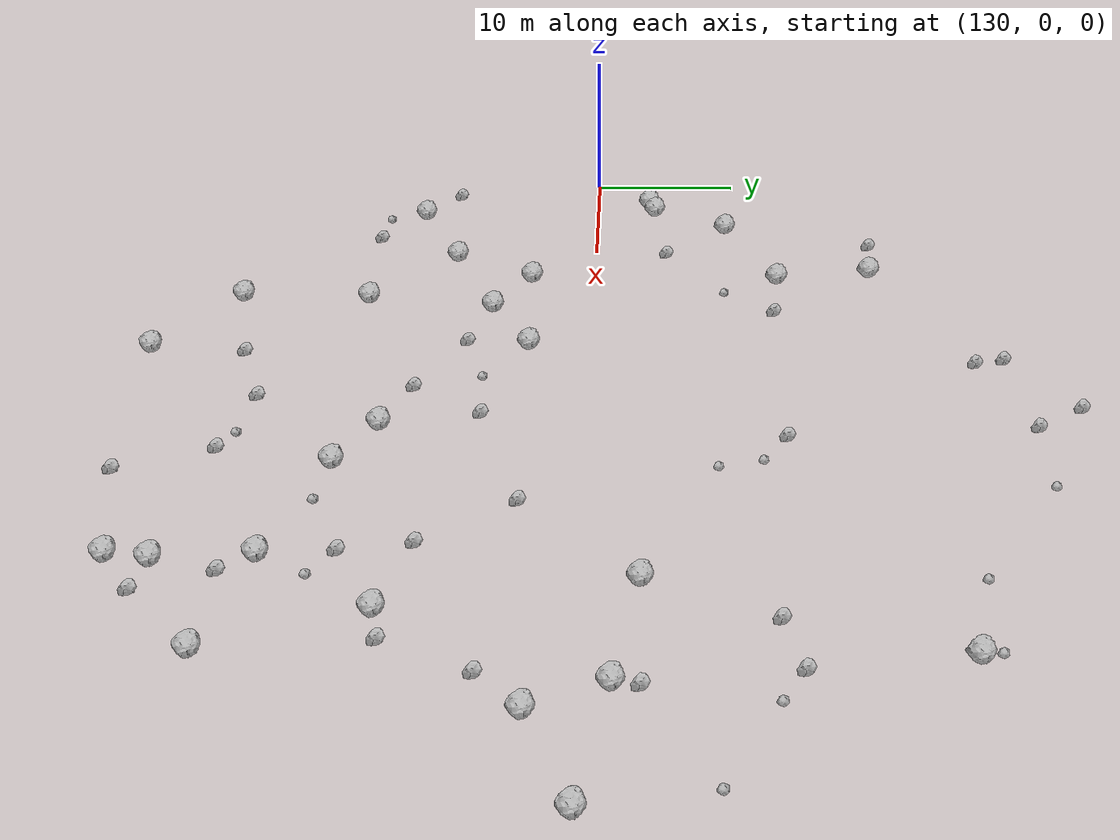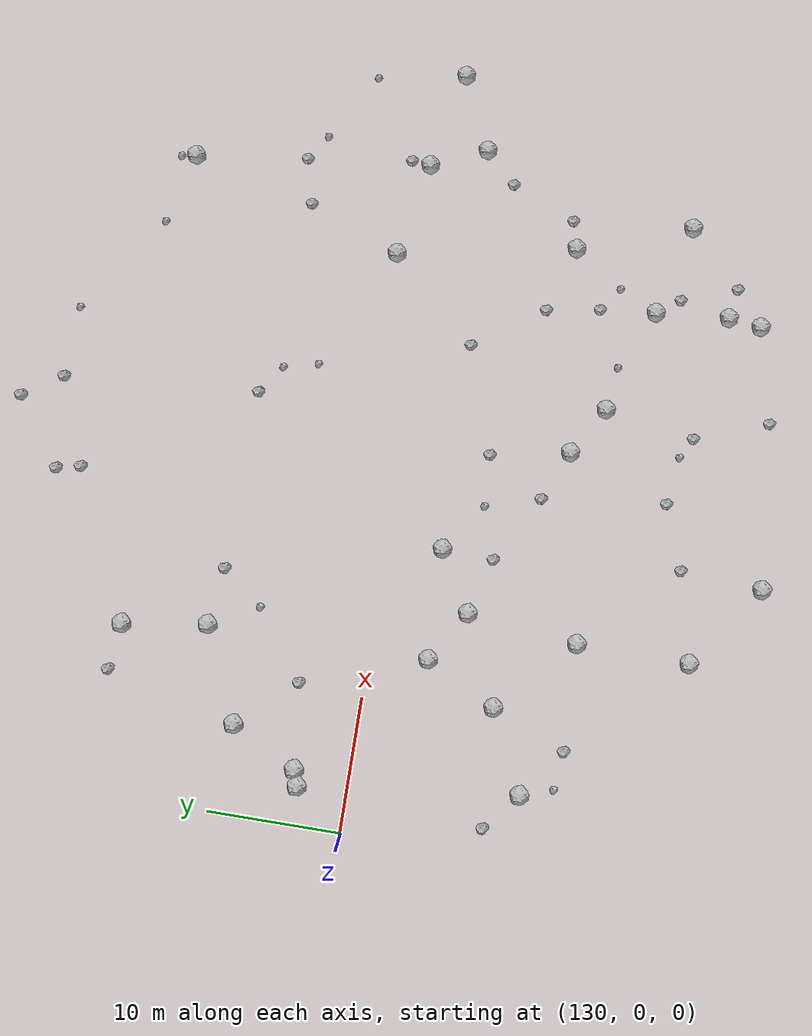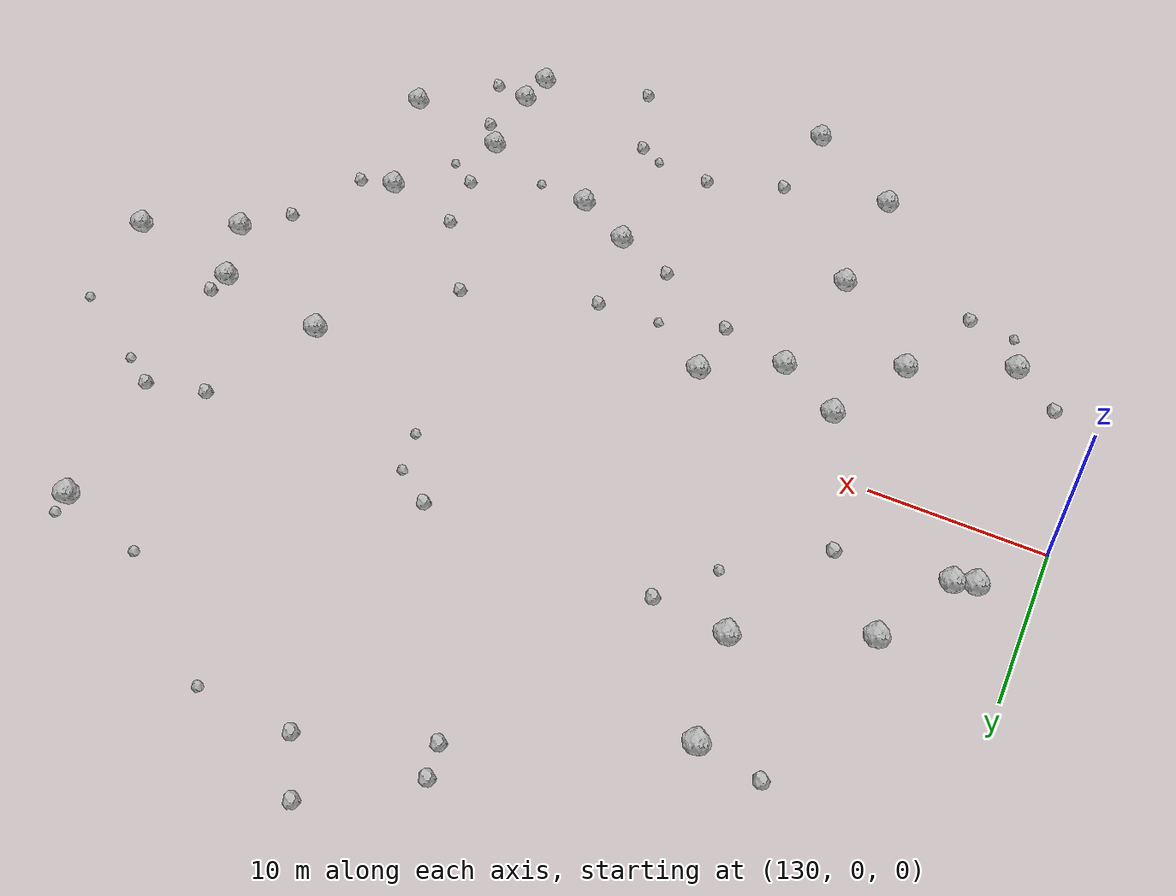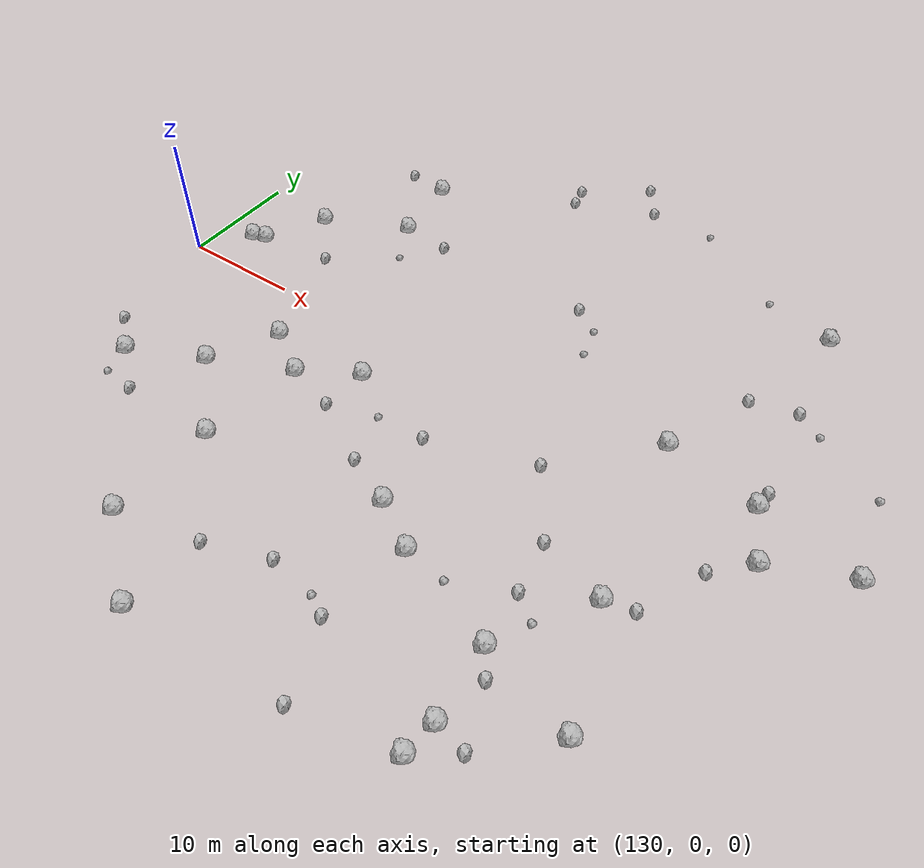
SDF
<sdf version="1.6">
 <world name="default">
  <include><uri>model://sun</uri></include>
  <model name="rock1_4_2">
   <include><uri>model://rock1</uri><pose>183.9381165141604 -2.7668238309870716 0.5 0 0 0</pose></include>
  </model>
  <model name="rock1_4_3">
   <include><uri>model://rock1</uri><pose>142.60001334289504 18.824330854534544 0.5 0 0 0</pose></include>
  </model>
  <model name="rock1_4_4">
   <include><uri>model://rock1</uri><pose>143.573957443503 12.411265155153352 0.5 0 0 0</pose></include>
  </model>
  <model name="rock1_4_5">
   <include><uri>model://rock1</uri><pose>172.89334235448467 -17.717118310057405 0.5 0 0 0</pose></include>
  </model>
  <model name="rock1_4_6">
   <include><uri>model://rock1</uri><pose>177.04416556039138 -10.892586975423367 0.5 0 0 0</pose></include>
  </model>
  <model name="rock1_4_7">
   <include><uri>model://rock1</uri><pose>164.67233326122403 -14.923375928928454 0.5 0 0 0</pose></include>
  </model>
  <model name="rock1_4_8">
   <include><uri>model://rock1</uri><pose>146.5656560862278 -15.211197189123894 0.5 0 0 0</pose></include>
  </model>
  <model name="rock1_4_9">
   <include><uri>model://rock1</uri><pose>160.9078884148404 -12.678851583704176 0.5 0 0 0</pose></include>
  </model>
  <model name="rock1_4_10">
   <include><uri>model://rock1</uri><pose>173.06548193923484 -25.928844998196737 0.5 0 0 0</pose></include>
  </model>
  <model name="rock1_4_11">
   <include><uri>model://rock1</uri><pose>152.01710901942255 -4.150832966494075 0.5 0 0 0</pose></include>
  </model>
  <model name="rock1_4_12">
   <include><uri>model://rock1</uri><pose>179.81603017561633 20.044635282094475 0.5 0 0 0</pose></include>
  </model>
  <model name="rock1_4_13">
   <include><uri>model://rock1</uri><pose>173.3891200636148 -23.39009480368769 0.5 0 0 0</pose></include>
  </model>
  <model name="rock1_4_14">
   <include><uri>model://rock1</uri><pose>189.88142331834146 -0.12949673418266627 0.5 0 0 0</pose></include>
  </model>
  <model name="rock1_4_15">
   <include><uri>model://rock1</uri><pose>174.4255890161702 3.011608439068638 0.5 0 0 0</pose></include>
  </model>
  <model name="rock1_4_16">
   <include><uri>model://rock1</uri><pose>146.46638719384626 -23.71113858335296 0.5 0 0 0</pose></include>
  </model>
  <model name="rock1_4_17">
   <include><uri>model://rock1</uri><pose>136.640501080197 9.165809405088645 0.5 0 0 0</pose></include>
  </model>
  <model name="rock1_4_18">
   <include><uri>model://rock1</uri><pose>132.95636966637963 3.7514575073921606 0.5 0 0 0</pose></include>
  </model>
  <model name="rock1_4_19">
   <include><uri>model://rock1</uri><pose>180.16321850592118 -19.723649351920134 0.5 0 0 0</pose></include>
  </model>
  <model name="rock1_4_20">
   <include><uri>model://rock1</uri><pose>143.65960139203594 -4.375634694712264 0.5 0 0 0</pose></include>
  </model>
  <model name="rock1_4_21">
   <include><uri>model://rock1</uri><pose>181.99543488797116 1.5450238159609277 0.5 0 0 0</pose></include>
  </model>
  <model name="rock1_4_22">
   <include><uri>model://rock1</uri><pose>134.94142465855552 -12.577054331336576 0.5 0 0 0</pose></include>
  </model>
  <model name="rock1_4_23">
   <include><uri>model://rock1</uri><pose>152.8069519519582 -28.451759792542905 0.5 0 0 0</pose></include>
  </model>
  <model name="rock1_4_24">
   <include><uri>model://rock1</uri><pose>134.11980525204535 4.156135478384314 0.5 0 0 0</pose></include>
  </model>
  <model name="rock1_4_25">
   <include><uri>model://rock1</uri><pose>147.52588653255745 -6.783166955270609 0.5 0 0 0</pose></include>
  </model>
  <model name="rock1_4_26">
   <include><uri>model://rock1</uri><pose>140.92909196321634 -9.725034916219943 0.5 0 0 0</pose></include>
  </model>
  <model name="rock2_4_0">
   <include><uri>model://rock2</uri><pose>153.2515609003192 -22.26765606355482 0.3 0 0 0</pose></include>
  </model>
  <model name="rock2_4_1">
   <include><uri>model://rock2</uri><pose>151.8029781598512 -8.089403019673842 0.3 0 0 0</pose></include>
  </model>
  <model name="rock2_4_2">
   <include><uri>model://rock2</uri><pose>158.13687542622165 -20.5251286508628 0.3 0 0 0</pose></include>
  </model>
  <model name="rock2_4_3">
   <include><uri>model://rock2</uri><pose>181.47623307429353 -5.258263862941103 0.3 0 0 0</pose></include>
  </model>
  <model name="rock2_4_4">
   <include><uri>model://rock2</uri><pose>177.3524197488026 10.31846520953497 0.3 0 0 0</pose></include>
  </model>
  <model name="rock2_4_5">
   <include><uri>model://rock2</uri><pose>175.80706505337065 -23.86922435211299 0.3 0 0 0</pose></include>
  </model>
  <model name="rock2_4_6">
   <include><uri>model://rock2</uri><pose>180.9835856892468 11.261020087550463 0.3 0 0 0</pose></include>
  </model>
  <model name="rock2_4_7">
   <include><uri>model://rock2</uri><pose>153.81030270207395 24.28219771515745 0.3 0 0 0</pose></include>
  </model>
  <model name="rock2_4_8">
   <include><uri>model://rock2</uri><pose>156.9960114768758 -11.001737826650245 0.3 0 0 0</pose></include>
  </model>
  <model name="rock2_4_9">
   <include><uri>model://rock2</uri><pose>179.25609868014917 -10.346060779174419 0.3 0 0 0</pose></include>
  </model>
  <model name="rock2_4_10">
   <include><uri>model://rock2</uri><pose>153.39565019902855 26.134410972435262 0.3 0 0 0</pose></include>
  </model>
  <model name="rock2_4_11">
   <include><uri>model://rock2</uri><pose>158.5539345140311 29.94806454930214 0.3 0 0 0</pose></include>
  </model>
  <model name="rock2_4_12">
   <include><uri>model://rock2</uri><pose>147.90645428000715 11.953624951499613 0.3 0 0 0</pose></include>
  </model>
  <model name="rock2_4_13">
   <include><uri>model://rock2</uri><pose>161.7416416817643 11.811360033688707 0.3 0 0 0</pose></include>
  </model>
  <model name="rock2_4_14">
   <include><uri>model://rock2</uri><pose>171.76155033723276 -9.27034818560643 0.3 0 0 0</pose></include>
  </model>
  <model name="rock2_4_15">
   <include><uri>model://rock2</uri><pose>140.37509989942197 4.91533727873702 0.3 0 0 0</pose></include>
  </model>
  <model name="rock2_4_16">
   <include><uri>model://rock2</uri><pose>163.48048678571945 -21.912972049480885 0.3 0 0 0</pose></include>
  </model>
  <model name="rock2_4_17">
   <include><uri>model://rock2</uri><pose>159.73165805251222 -6.628604406422173 0.3 0 0 0</pose></include>
  </model>
  <model name="rock2_4_18">
   <include><uri>model://rock2</uri><pose>160.54884670499175 26.94375393255492 0.3 0 0 0</pose></include>
  </model>
  <model name="rock2_4_19">
   <include><uri>model://rock2</uri><pose>138.54688193849358 -15.380166436980709 0.3 0 0 0</pose></include>
  </model>
  <model name="rock2_4_20">
   <include><uri>model://rock2</uri><pose>132.11965266093063 -10.246959653229673 0.3 0 0 0</pose></include>
  </model>
  <model name="rock2_4_21">
   <include><uri>model://rock2</uri><pose>172.473937343633 -13.414669555534658 0.3 0 0 0</pose></include>
  </model>
  <model name="rock2_4_22">
   <include><uri>model://rock2</uri><pose>165.57538953267854 -27.55867409521936 0.3 0 0 0</pose></include>
  </model>
  <model name="rock2_4_23">
   <include><uri>model://rock2</uri><pose>174.22326350151747 -19.55362847572897 0.3 0 0 0</pose></include>
  </model>
  <model name="rock2_4_24">
   <include><uri>model://rock2</uri><pose>168.04976497880898 -3.871184024422547 0.3 0 0 0</pose></include>
  </model>
  <model name="rock2_4_25">
   <include><uri>model://rock2</uri><pose>139.08711227335732 19.238871054938585 0.3 0 0 0</pose></include>
  </model>
  <model name="rock2_4_26">
   <include><uri>model://rock2</uri><pose>182.14391624521318 3.03275814258415 0.3 0 0 0</pose></include>
  </model>
  <model name="rock3_4_0">
   <include><uri>model://rock3</uri><pose>161.85497753814244 -21.0899346830339 0.2 0 0 0</pose></include>
  </model>
  <model name="rock3_4_1">
   <include><uri>model://rock3</uri><pose>179.60582398926897 21.229303783379784 0.2 0 0 0</pose></include>
  </model>
  <model name="rock3_4_2">
   <include><uri>model://rock3</uri><pose>163.97606026392268 10.246783872251065 0.2 0 0 0</pose></include>
  </model>
  <model name="rock3_4_3">
   <include><uri>model://rock3</uri><pose>168.07081159864597 -15.44918351842075 0.2 0 0 0</pose></include>
  </model>
  <model name="rock3_4_4">
   <include><uri>model://rock3</uri><pose>155.71820140564884 -6.852537863694707 0.2 0 0 0</pose></include>
  </model>
  <model name="rock3_4_5">
   <include><uri>model://rock3</uri><pose>135.6562494230303 -15.082068256203254 0.2 0 0 0</pose></include>
  </model>
  <model name="rock3_4_6">
   <include><uri>model://rock3</uri><pose>145.42111291696307 8.740793903422514 0.2 0 0 0</pose></include>
  </model>
  <model name="rock3_4_7">
   <include><uri>model://rock3</uri><pose>183.06767726403777 9.934229398305874 0.2 0 0 0</pose></include>
  </model>
  <model name="rock3_4_8">
   <include><uri>model://rock3</uri><pose>188.59560984375742 6.793712773539632 0.2 0 0 0</pose></include>
  </model>
  <model name="rock3_4_9">
   <include><uri>model://rock3</uri><pose>166.14514596866815 26.77519455808644 0.2 0 0 0</pose></include>
  </model>
  <model name="rock3_4_10">
   <include><uri>model://rock3</uri><pose>164.6409261452332 7.581042115953551 0.2 0 0 0</pose></include>
  </model>
  <model name="rock3_4_11">
   <include><uri>model://rock3</uri><pose>174.36232776436626 -14.809470819407169 0.2 0 0 0</pose></include>
  </model>
  <model name="rock3_4_12">
   <include><uri>model://rock3</uri><pose>174.08940288080638 21.472762945364096 0.2 0 0 0</pose></include>
  </model>
 </world>
</sdf>
